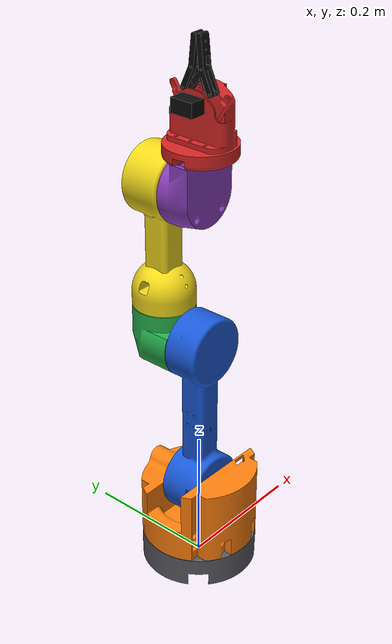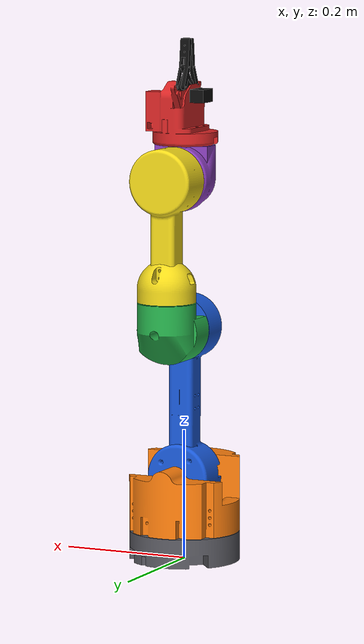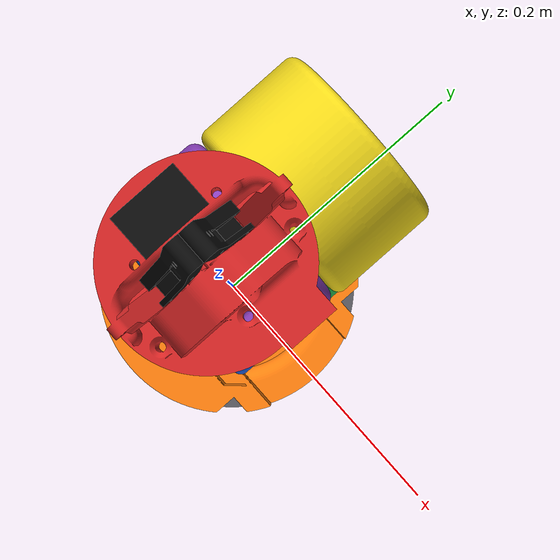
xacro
<?xml version="1.0"?>
<robot name="rk6" xmlns:xacro="http://www.ros.org/wiki/xacro">

  <xacro:include filename="$(find rk6_description)/urdf/rk6_macros.xacro"/>
  <!-- otomatik uretilen kutle/atalet/carpisma kutusu degerleri -->
  <xacro:include filename="$(find rk6_description)/urdf/rk6_mesh_props.xacro"/>

  <!-- gripper:=false ile gripper'siz model uretilir -->
  <xacro:arg name="gripper" default="true"/>
  <xacro:property name="use_gripper" value="$(arg gripper)"/>

  <!-- ========== DH uzunluklari [m] (bilgi amacli; eklem orijinleri asagida) ========== -->
  <xacro:property name="d1" value="0.1313"/>
  <xacro:property name="a2" value="0.22995"/>
  <xacro:property name="d3" value="0.0652"/>
  <xacro:property name="d4" value="0.22995"/>
  <xacro:property name="d5" value="-0.066"/>
  <xacro:property name="d6" value="0.20093"/>
  <!-- link6 (J6 horn) -> tool0 -->
  <xacro:property name="tool_z" value="0.15013"/>

  <xacro:property name="base_height" value="0.0"/>

  <!-- Eklem limitleri (kinematics_spec.json; Fusion'da limit yok, varsayim) -->
  <xacro:property name="vel_lim" value="2.0"/>
  <xacro:property name="lim1" value="2.356194"/>
  <xacro:property name="lim2" value="1.570796"/>
  <xacro:property name="lim3" value="2.356194"/>
  <xacro:property name="lim4" value="1.570796"/>
  <xacro:property name="lim5" value="1.570796"/>
  <xacro:property name="lim6" value="1.570796"/>

  <!-- ========== world & base ========== -->
  <link name="world"/>

  <joint name="world_joint" type="fixed">
    <parent link="world"/>
    <child link="base_link"/>
    <origin xyz="0 0 ${base_height}" rpy="0 0 0"/>
  </joint>

  <link name="base_link">
    <!-- Fusion: taban plakasi (alt tabla) + J1 servo govdesi. 4 ayak (Ayaklik) simulasyonda yok.
         Carpisma kutusu 0.17 x 0.17 x 0.0577 m, alt yuzu z = 0 (zemine oturur, altina inmez). -->
    <xacro:mesh_link_body name="base_link" material="rk6_grey" m="${base_link_m}" com="${base_link_com}"
        ixx="${base_link_ixx}" iyy="${base_link_iyy}" izz="${base_link_izz}"
        bb_c="${base_link_bb_c}" bb_s="${base_link_bb_s}"/>
  </link>

  <!-- ========== joint1 / link1 (taban donusu, dusey eksen) ========== -->
  <joint name="joint1" type="revolute">
    <parent link="base_link"/>
    <child link="link1"/>
    <origin xyz="0 0 0.0547" rpy="0 0 0"/>
    <axis xyz="0 0 1"/>
    <limit lower="${-lim1}" upper="${lim1}" effort="100.0" velocity="${vel_lim}"/>
    <dynamics damping="0.5" friction="0.0"/>
  </joint>

  <link name="link1">
    <!-- J1 horn, doner tabla (sol/sag parca), omuz servosu DS51150 -->
    <xacro:mesh_link_body name="link1" material="rk6_orange" m="${link1_m}" com="${link1_com}"
        ixx="${link1_ixx}" iyy="${link1_iyy}" izz="${link1_izz}"
        bb_c="${link1_bb_c}" bb_s="${link1_bb_s}"/>
  </link>

  <!-- ========== joint2 / link2 (omuz) ========== -->
  <joint name="joint2" type="revolute">
    <parent link="link1"/>
    <child link="link2"/>
    <origin xyz="0 -0.0308 0.0766" rpy="0 0 0"/>
    <axis xyz="0 1 0"/>
    <limit lower="${-lim2}" upper="${lim2}" effort="100.0" velocity="${vel_lim}"/>
    <dynamics damping="0.5" friction="0.0"/>
  </joint>

  <link name="link2">
    <!-- Ilk Kol (ust kol) + kapaklar, J2 horn, dirsek servosu -->
    <xacro:mesh_link_body name="link2" material="rk6_blue" m="${link2_m}" com="${link2_com}"
        ixx="${link2_ixx}" iyy="${link2_iyy}" izz="${link2_izz}"
        bb_c="${link2_bb_c}" bb_s="${link2_bb_s}"/>
  </link>

  <!-- ========== joint3 / link3 (dirsek) ========== -->
  <joint name="joint3" type="revolute">
    <parent link="link2"/>
    <child link="link3"/>
    <origin xyz="0 0.0509 0.22995" rpy="0 0 0"/>
    <axis xyz="0 1 0"/>
    <limit lower="${-lim3}" upper="${lim3}" effort="60.0" velocity="${vel_lim}"/>
    <dynamics damping="0.5" friction="0.0"/>
  </joint>

  <link name="link3">
    <!-- 4. Eksen alt govde, J3 horn, J4 servosu -->
    <xacro:mesh_link_body name="link3" material="rk6_green" m="${link3_m}" com="${link3_com}"
        ixx="${link3_ixx}" iyy="${link3_iyy}" izz="${link3_izz}"
        bb_c="${link3_bb_c}" bb_s="${link3_bb_s}"/>
  </link>

  <!-- ========== joint4 / link4 (on kol donusu) ========== -->
  <joint name="joint4" type="revolute">
    <parent link="link3"/>
    <child link="link4"/>
    <origin xyz="0 0.0451 0.0508" rpy="0 0 0"/>
    <axis xyz="0 0 1"/>
    <limit lower="${-lim4}" upper="${lim4}" effort="30.0" velocity="${vel_lim}"/>
    <dynamics damping="0.3" friction="0.0"/>
  </joint>

  <link name="link4">
    <!-- 4. Eksen ust, Ikinci Kol (on kol) + kapak, J4 horn, bilek servosu -->
    <xacro:mesh_link_body name="link4" material="rk6_yellow" m="${link4_m}" com="${link4_com}"
        ixx="${link4_ixx}" iyy="${link4_iyy}" izz="${link4_izz}"
        bb_c="${link4_bb_c}" bb_s="${link4_bb_s}"/>
  </link>

  <!-- ========== joint5 / link5 (bilek egilme) ========== -->
  <joint name="joint5" type="revolute">
    <parent link="link4"/>
    <child link="link5"/>
    <origin xyz="0 -0.0309 0.17915" rpy="0 0 0"/>
    <axis xyz="0 1 0"/>
    <limit lower="${-lim5}" upper="${lim5}" effort="30.0" velocity="${vel_lim}"/>
    <dynamics damping="0.3" friction="0.0"/>
  </joint>

  <link name="link5">
    <!-- 5. Eksen alt/ust parca, J5 horn, J6 servosu -->
    <xacro:mesh_link_body name="link5" material="rk6_purple" m="${link5_m}" com="${link5_com}"
        ixx="${link5_ixx}" iyy="${link5_iyy}" izz="${link5_izz}"
        bb_c="${link5_bb_c}" bb_s="${link5_bb_s}"/>
  </link>

  <!-- ========== joint6 / link6 (gripper donusu) ========== -->
  <joint name="joint6" type="revolute">
    <parent link="link5"/>
    <child link="link6"/>
    <origin xyz="0 -0.0351 0.0508" rpy="0 0 0"/>
    <axis xyz="0 0 1"/>
    <limit lower="${-lim6}" upper="${lim6}" effort="20.0" velocity="${vel_lim}"/>
    <dynamics damping="0.2" friction="0.0"/>
  </joint>

  <link name="link6">
    <!-- gripper tabani + govde + kapak + gripper servosu + J6 horn + disliler (dislilere sabit kabul) -->
    <xacro:mesh_link_body name="link6" material="rk6_red" m="${link6_m}" com="${link6_com}"
        ixx="${link6_ixx}" iyy="${link6_iyy}" izz="${link6_izz}"
        bb_c="${link6_bb_c}" bb_s="${link6_bb_s}"/>
  </link>

  <!-- ========== uc-efektor cercevesi tool0 = DH cercevesi 6 (parmak pad ortasi) ========== -->
  <joint name="tool0_joint" type="fixed">
    <parent link="link6"/>
    <child link="tool0"/>
    <origin xyz="0 0 ${tool_z}" rpy="0 0 0"/>
  </joint>

  <link name="tool0">
    <xacro:small_inertial m="0.01"/>
  </link>

  <!-- ========== Sensor cerceveleri ========== -->
  <joint name="camera_joint" type="fixed">
    <parent link="link6"/>
    <child link="camera_link"/>
    <origin xyz="-0.0256 0 0.075" rpy="0 ${-pi/2} 0"/>
  </joint>

  <link name="camera_link">
    <visual>
      <origin xyz="0 0 0" rpy="0 0 0"/>
      <geometry><box size="0.02 0.035 0.025"/></geometry>
      <material name="rk6_black"/>
    </visual>
    <collision>
      <origin xyz="0 0 0" rpy="0 0 0"/>
      <geometry><box size="0.02 0.035 0.025"/></geometry>
    </collision>
    <xacro:small_inertial m="0.02"/>
  </link>

  <!-- IMU: link6 icinde (gripper tabani ustu), eksenleri link6 ile ayni -->
  <joint name="imu_joint" type="fixed">
    <parent link="link6"/>
    <child link="imu_link"/>
    <origin xyz="0 0 0.03" rpy="0 0 0"/>
  </joint>

  <link name="imu_link">
    <xacro:small_inertial m="0.01"/>
  </link>

  <!-- ========== Gripper parmaklari (istege bagli, DoF'a dahil degil) ========== -->
  <xacro:if value="${use_gripper}">
    <xacro:include filename="$(find rk6_description)/urdf/rk6_gripper.xacro"/>
  </xacro:if>

  <!-- ========== ros2_control + Gazebo ========== -->
  <xacro:include filename="$(find rk6_description)/urdf/rk6.ros2_control.xacro"/>
  <xacro:include filename="$(find rk6_description)/urdf/rk6.gazebo.xacro"/>

</robot>

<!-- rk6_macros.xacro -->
<!-- rk6 yardimci makrolari: malzemeler, silindir govde (visual+collision), silindir ataletleri, mesh link govdesi -->
<robot xmlns:xacro="http://www.ros.org/wiki/xacro">

  <!-- Renkler (her link farkli renk) -->
  <material name="rk6_grey">   <color rgba="0.35 0.35 0.38 1.0"/></material>
  <material name="rk6_orange"> <color rgba="1.00 0.50 0.05 1.0"/></material>
  <material name="rk6_blue">   <color rgba="0.10 0.35 0.85 1.0"/></material>
  <material name="rk6_green">  <color rgba="0.15 0.70 0.30 1.0"/></material>
  <material name="rk6_yellow"> <color rgba="0.95 0.85 0.10 1.0"/></material>
  <material name="rk6_purple"> <color rgba="0.55 0.25 0.75 1.0"/></material>
  <material name="rk6_red">    <color rgba="0.85 0.15 0.15 1.0"/></material>
  <material name="rk6_black">  <color rgba="0.05 0.05 0.05 1.0"/></material>

  <!-- Silindir parcasi: ayni geometri hem visual hem collision olarak -->
  <xacro:macro name="cyl_part" params="r l xyz rpy material">
    <visual>
      <origin xyz="${xyz}" rpy="${rpy}"/>
      <geometry><cylinder radius="${r}" length="${l}"/></geometry>
      <material name="${material}"/>
    </visual>
    <collision>
      <origin xyz="${xyz}" rpy="${rpy}"/>
      <geometry><cylinder radius="${r}" length="${l}"/></geometry>
    </collision>
  </xacro:macro>

  <!-- Dolu silindir ataleti (eksen: silindirin kendi z ekseni, origin rpy ile yonlendirilir)
       Ixx = Iyy = m(3r^2 + l^2)/12 ,  Izz = m r^2 / 2 -->
  <xacro:macro name="cyl_inertial" params="m r l xyz rpy">
    <inertial>
      <origin xyz="${xyz}" rpy="${rpy}"/>
      <mass value="${m}"/>
      <inertia ixx="${m*(3*r*r + l*l)/12}" ixy="0" ixz="0"
               iyy="${m*(3*r*r + l*l)/12}" iyz="0"
               izz="${m*r*r/2}"/>
    </inertial>
  </xacro:macro>

  <xacro:macro name="mesh_link_body" params="name material m com ixx iyy izz bb_c bb_s">
    <visual>
      <origin xyz="0 0 0" rpy="0 0 0"/>
      <geometry><mesh filename="package://rk6_description/meshes/${name}.stl"/></geometry>
      <material name="${material}"/>
    </visual>
    <collision>
      <origin xyz="${bb_c}" rpy="0 0 0"/>
      <geometry><box size="${bb_s}"/></geometry>
    </collision>
    <inertial>
      <origin xyz="${com}" rpy="0 0 0"/>
      <mass value="${m}"/>
      <inertia ixx="${ixx}" ixy="0" ixz="0" iyy="${iyy}" iyz="0" izz="${izz}"/>
    </inertial>
  </xacro:macro>

  <!-- Kucuk sabit parcalar (kamera, IMU, tool0) icin kucuk atalet -->
  <xacro:macro name="small_inertial" params="m">
    <inertial>
      <origin xyz="0 0 0" rpy="0 0 0"/>
      <mass value="${m}"/>
      <inertia ixx="1e-6" ixy="0" ixz="0" iyy="1e-6" iyz="0" izz="1e-6"/>
    </inertial>
  </xacro:macro>

</robot>

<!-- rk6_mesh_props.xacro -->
<robot xmlns:xacro="http://www.ros.org/wiki/xacro">
  <!-- base_link: 23900 ucgen -->
  <xacro:property name="base_link_m" value="0.4940"/>
  <xacro:property name="base_link_com" value="0.00052 -0.00105 0.02697"/>
  <xacro:property name="base_link_ixx" value="0.0006501"/>
  <xacro:property name="base_link_iyy" value="0.0006501"/>
  <xacro:property name="base_link_izz" value="0.001166"/>
  <xacro:property name="base_link_bb_c" value="0.00003 -0.00004 0.02885"/>
  <xacro:property name="base_link_bb_s" value="0.17000 0.17000 0.05770"/>
  <!-- link1: 30986 ucgen -->
  <xacro:property name="link1_m" value="0.6740"/>
  <xacro:property name="link1_com" value="-0.00048 -0.01086 0.04003"/>
  <xacro:property name="link1_ixx" value="0.001153"/>
  <xacro:property name="link1_iyy" value="0.001153"/>
  <xacro:property name="link1_izz" value="0.001591"/>
  <xacro:property name="link1_bb_c" value="0.00000 0.00000 0.04810"/>
  <xacro:property name="link1_bb_s" value="0.17000 0.17000 0.11400"/>
  <!-- link2: 45012 ucgen -->
  <xacro:property name="link2_m" value="0.4205"/>
  <xacro:property name="link2_com" value="-0.00007 0.02779 0.11678"/>
  <xacro:property name="link2_ixx" value="0.00198"/>
  <xacro:property name="link2_iyy" value="0.002042"/>
  <xacro:property name="link2_izz" value="0.0002819"/>
  <xacro:property name="link2_bb_c" value="0.00000 0.04005 0.11500"/>
  <xacro:property name="link2_bb_s" value="0.10000 0.08010 0.33000"/>
  <!-- link3: 34234 ucgen -->
  <xacro:property name="link3_m" value="0.2745"/>
  <xacro:property name="link3_com" value="-0.00194 0.03969 0.00880"/>
  <xacro:property name="link3_ixx" value="0.0002118"/>
  <xacro:property name="link3_iyy" value="0.0002329"/>
  <xacro:property name="link3_izz" value="0.0002031"/>
  <xacro:property name="link3_bb_c" value="0.00000 0.04505 0.00190"/>
  <xacro:property name="link3_bb_s" value="0.10000 0.09010 0.10380"/>
  <!-- link4: 43456 ucgen -->
  <xacro:property name="link4_m" value="0.3500"/>
  <xacro:property name="link4_com" value="-0.00039 -0.00076 0.12653"/>
  <xacro:property name="link4_ixx" value="0.0008955"/>
  <xacro:property name="link4_iyy" value="0.0009227"/>
  <xacro:property name="link4_izz" value="0.0002586"/>
  <xacro:property name="link4_bb_c" value="-0.00005 0.00000 0.11240"/>
  <xacro:property name="link4_bb_s" value="0.10000 0.09000 0.23360"/>
  <!-- link5: 35696 ucgen -->
  <xacro:property name="link5_m" value="0.1990"/>
  <xacro:property name="link5_com" value="-0.00253 -0.02710 0.00691"/>
  <xacro:property name="link5_ixx" value="0.0001079"/>
  <xacro:property name="link5_iyy" value="0.0001688"/>
  <xacro:property name="link5_izz" value="0.0001016"/>
  <xacro:property name="link5_bb_c" value="-0.00004 -0.02505 0.00188"/>
  <xacro:property name="link5_bb_s" value="0.09999 0.05010 0.10380"/>
  <!-- link6: 67874 ucgen -->
  <xacro:property name="link6_m" value="0.2454"/>
  <xacro:property name="link6_com" value="0.01095 0.00465 0.04043"/>
  <xacro:property name="link6_ixx" value="0.0001908"/>
  <xacro:property name="link6_iyy" value="0.0001969"/>
  <xacro:property name="link6_izz" value="0.0002064"/>
  <xacro:property name="link6_bb_c" value="0.00140 0.00001 0.04753"/>
  <xacro:property name="link6_bb_s" value="0.10299 0.09998 0.09510"/>
  <!-- gripper_left_finger: 1620 ucgen -->
  <xacro:property name="gripper_left_finger_m" value="0.0200"/>
  <xacro:property name="gripper_left_finger_com" value="-0.00288 0.00475 0.12027"/>
  <xacro:property name="gripper_left_finger_ixx" value="1e-05"/>
  <xacro:property name="gripper_left_finger_iyy" value="1e-05"/>
  <xacro:property name="gripper_left_finger_izz" value="1e-05"/>
  <xacro:property name="gripper_left_finger_bb_c" value="-0.00290 0.00188 0.12227"/>
  <xacro:property name="gripper_left_finger_bb_s" value="0.01500 0.04684 0.07838"/>
  <!-- gripper_right_finger: 1620 ucgen -->
  <xacro:property name="gripper_right_finger_m" value="0.0200"/>
  <xacro:property name="gripper_right_finger_com" value="-0.00288 -0.00470 0.12024"/>
  <xacro:property name="gripper_right_finger_ixx" value="1e-05"/>
  <xacro:property name="gripper_right_finger_iyy" value="1e-05"/>
  <xacro:property name="gripper_right_finger_izz" value="1e-05"/>
  <xacro:property name="gripper_right_finger_bb_c" value="-0.00290 -0.00178 0.12226"/>
  <xacro:property name="gripper_right_finger_bb_s" value="0.01500 0.04684 0.07835"/>
  <xacro:property name="finger_s0_left" value="0.02355"/>
  <xacro:property name="finger_s0_right" value="0.02364"/>
</robot>

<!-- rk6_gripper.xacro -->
<robot xmlns:xacro="http://www.ros.org/wiki/xacro">

  <!-- tek parmak strok sinirlari [m] (export acikligi finger_s0_left ~ 0.0236) -->
  <xacro:property name="finger_open" value="0.0235"/>
  <xacro:property name="finger_upper" value="0.025"/>
  <xacro:property name="finger_margin" value="0.002"/>
  <!-- parmak pad carpisma kutusu (parmak cercevesinde, sol parmak icin; sag icin y aynalanir) -->
  <xacro:property name="pad_x" value="0.015"/>
  <xacro:property name="pad_y" value="0.008"/>
  <xacro:property name="pad_z" value="0.036"/>
  <xacro:property name="pad_cx" value="-0.0029"/>
  <xacro:property name="pad_cz" value="0.143"/>

  <!-- ========== parmaklar (side = left/right, sign = +1/-1) ========== -->
  <xacro:macro name="rk6_finger" params="side sign m com ixx iyy izz">
    <joint name="gripper_${side}_finger_joint" type="prismatic">
      <parent link="link6"/>
      <child link="gripper_${side}_finger"/>
      <origin xyz="0 0 0" rpy="0 0 0"/>
      <axis xyz="0 ${sign} 0"/>
      <!-- Sinirlarda kucuk pay: parmak 0'da dururken fizik motoru -1e-19 gibi degerler
           raporlar; sinir tam 0 olursa ros2_control limit korumasi komutu engelliyor -->
      <limit lower="${-finger_margin}" upper="${finger_upper}" effort="20.0" velocity="0.1"/>
      <dynamics damping="1.0" friction="0.0"/>
    </joint>

    <link name="gripper_${side}_finger">
      <visual>
        <origin xyz="0 0 0" rpy="0 0 0"/>
        <geometry><mesh filename="package://rk6_description/meshes/gripper_${side}_finger.stl"/></geometry>
        <material name="rk6_black"/>
      </visual>
      <!-- carpisma: sadece parmak ucu pad'i (kavrama yuzeyi) -->
      <collision>
        <origin xyz="${pad_cx} ${sign*pad_y/2} ${pad_cz}" rpy="0 0 0"/>
        <geometry><box size="${pad_x} ${pad_y} ${pad_z}"/></geometry>
      </collision>
      <inertial>
        <origin xyz="${com}" rpy="0 0 0"/>
        <mass value="${m}"/>
        <inertia ixx="${ixx}" ixy="0" ixz="0" iyy="${iyy}" iyz="0" izz="${izz}"/>
      </inertial>
    </link>

    <!-- Kavrama icin yuksek surtunme ve sert temas (nesne parmaklar arasindan kaymasin) -->
    <gazebo reference="gripper_${side}_finger">
      <mu1>1.5</mu1>
      <mu2>1.5</mu2>
      <kp>1000000.0</kp>
      <kd>100.0</kd>
      <minDepth>0.001</minDepth>
      <maxVel>0.1</maxVel>
    </gazebo>
  </xacro:macro>

  <xacro:rk6_finger side="left" sign="1" m="${gripper_left_finger_m}" com="${gripper_left_finger_com}"
      ixx="${gripper_left_finger_ixx}" iyy="${gripper_left_finger_iyy}" izz="${gripper_left_finger_izz}"/>
  <xacro:rk6_finger side="right" sign="-1" m="${gripper_right_finger_m}" com="${gripper_right_finger_com}"
      ixx="${gripper_right_finger_ixx}" iyy="${gripper_right_finger_iyy}" izz="${gripper_right_finger_izz}"/>

  <!-- ========== kavrama noktasi (TCP) = tool0 ========== -->
  <joint name="gripper_tcp_joint" type="fixed">
    <parent link="tool0"/>
    <child link="gripper_tcp"/>
    <origin xyz="0 0 0" rpy="0 0 0"/>
  </joint>

  <link name="gripper_tcp">
    <xacro:small_inertial m="0.001"/>
  </link>

</robot>
